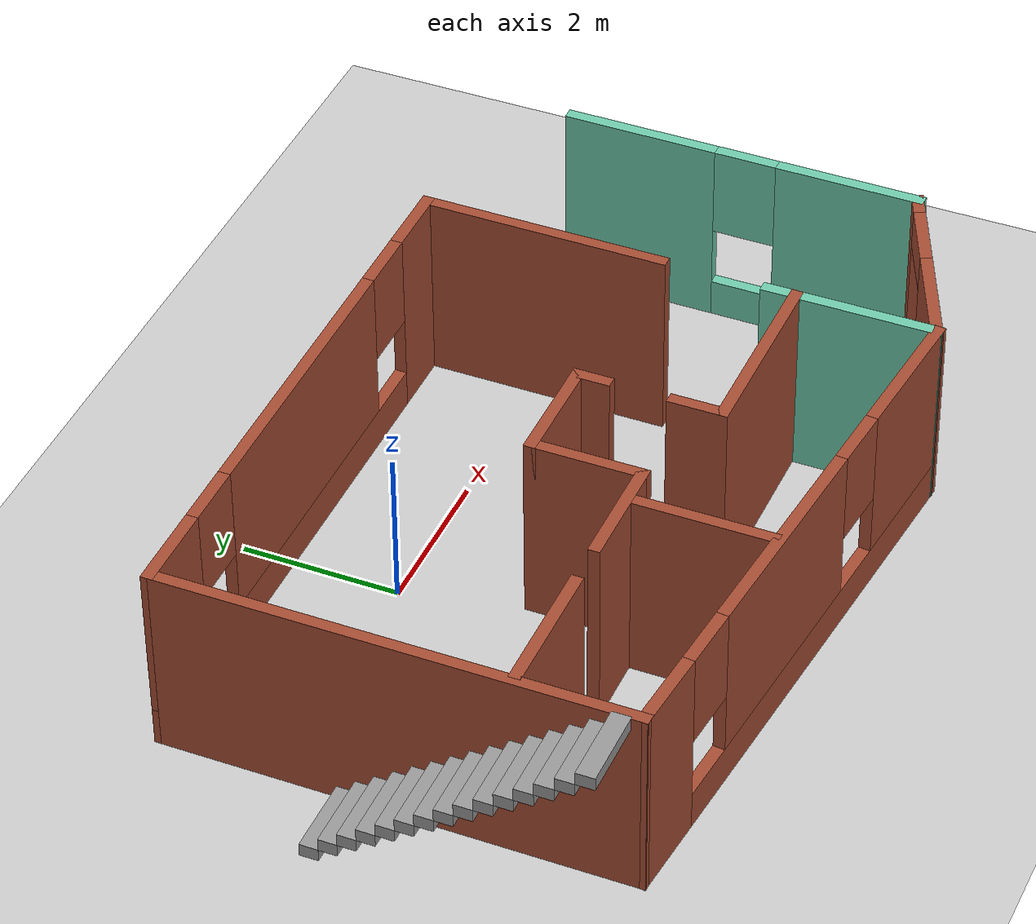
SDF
<sdf version="1.5">
 <world name="default">
  <light name="sun" type="directional">
   <pose>0 0 10 0 -0 0</pose>
   <diffuse>0.8 0.8 0.8 1</diffuse>
   <specular>0.2 0.2 0.2 1</specular>
   <attenuation>
    <range>1000</range>
    <constant>0.9</constant>
    <linear>0.01</linear>
    <quadratic>0.001</quadratic>
   </attenuation>
   <direction>-0.5 0.1 -0.9</direction>
  </light>
  <model name="ground_plane">
   <static>1</static>
   <link name="link">
    <collision name="collision">
     <geometry><plane><normal>0 0 1</normal><size>100 100</size></plane></geometry>
     <surface><friction><ode><mu>100</mu><mu2>50</mu2></ode></friction></surface>
    </collision>
    <visual name="visual">
     <cast_shadows>0</cast_shadows>
     <geometry><plane><normal>0 0 1</normal><size>100 100</size></plane></geometry>
     <material>
      <script><uri>file://media/materials/scripts/gazebo.material</uri><name>Gazebo/Grey</name></script>
     </material>
    </visual>
   </link>
  </model>
  <physics name="default_physics" default="0" type="ode">
   <max_step_size>0.001</max_step_size>
   <real_time_factor>1</real_time_factor>
   <real_time_update_rate>1000</real_time_update_rate>
   <gravity>0 0 -9.8</gravity>
   <magnetic_field>5.5645e-06 2.28758e-05 -4.23884e-05</magnetic_field>
  </physics>
  <scene><ambient>0.4 0.4 0.4 1</ambient><background>0.7 0.7 0.7 1</background><shadows>1</shadows></scene>
  <spherical_coordinates>
   <surface_model>EARTH_WGS84</surface_model>
   <latitude_deg>0</latitude_deg>
   <longitude_deg>0</longitude_deg>
   <elevation>0</elevation>
   <heading_deg>0</heading_deg>
  </spherical_coordinates>
  <model name="world_1">
   <pose>1.10777 -1.85239 0 0 -0 0</pose>
   <link name="Stairs_0">
    <visual name="Stairs_0_Visual_0">
     <pose>-4.90473 0.962573 0.083333 0 -0 0</pose>
     <geometry><box><size>1 0.233333 0.166667</size></box></geometry>
     <material>
      <script><uri>file://media/materials/scripts/gazebo.material</uri><name>Gazebo/Grey</name></script>
      <ambient>1 1 1 1</ambient>
     </material>
     <meta><layer>0</layer></meta>
    </visual>
    <collision name="Stairs_0_Collision_0">
     <geometry><box><size>1 0.233333 0.166667</size></box></geometry>
     <pose>-4.90473 0.962573 0.083333 0 -0 0</pose>
    </collision>
    <visual name="Stairs_0_Visual_1">
     <pose>-4.90473 0.72924 0.25 0 -0 0</pose>
     <geometry><box><size>1 0.233333 0.166667</size></box></geometry>
     <material>
      <script><uri>file://media/materials/scripts/gazebo.material</uri><name>Gazebo/Grey</name></script>
      <ambient>1 1 1 1</ambient>
     </material>
     <meta><layer>0</layer></meta>
    </visual>
    <collision name="Stairs_0_Collision_1">
     <geometry><box><size>1 0.233333 0.166667</size></box></geometry>
     <pose>-4.90473 0.72924 0.25 0 -0 0</pose>
    </collision>
    <visual name="Stairs_0_Visual_2">
     <pose>-4.90473 0.495906 0.416667 0 -0 0</pose>
     <geometry><box><size>1 0.233333 0.166667</size></box></geometry>
     <material>
      <script><uri>file://media/materials/scripts/gazebo.material</uri><name>Gazebo/Grey</name></script>
      <ambient>1 1 1 1</ambient>
     </material>
     <meta><layer>0</layer></meta>
    </visual>
    <collision name="Stairs_0_Collision_2">
     <geometry><box><size>1 0.233333 0.166667</size></box></geometry>
     <pose>-4.90473 0.495906 0.416667 0 -0 0</pose>
    </collision>
    <visual name="Stairs_0_Visual_3">
     <pose>-4.90473 0.262573 0.583333 0 -0 0</pose>
     <geometry><box><size>1 0.233333 0.166667</size></box></geometry>
     <material>
      <script><uri>file://media/materials/scripts/gazebo.material</uri><name>Gazebo/Grey</name></script>
      <ambient>1 1 1 1</ambient>
     </material>
     <meta><layer>0</layer></meta>
    </visual>
    <collision name="Stairs_0_Collision_3">
     <geometry><box><size>1 0.233333 0.166667</size></box></geometry>
     <pose>-4.90473 0.262573 0.583333 0 -0 0</pose>
    </collision>
    <visual name="Stairs_0_Visual_4">
     <pose>-4.90473 0.02924 0.75 0 -0 0</pose>
     <geometry><box><size>1 0.233333 0.166667</size></box></geometry>
     <material>
      <script><uri>file://media/materials/scripts/gazebo.material</uri><name>Gazebo/Grey</name></script>
      <ambient>1 1 1 1</ambient>
     </material>
     <meta><layer>0</layer></meta>
    </visual>
    <collision name="Stairs_0_Collision_4">
     <geometry><box><size>1 0.233333 0.166667</size></box></geometry>
     <pose>-4.90473 0.02924 0.75 0 -0 0</pose>
    </collision>
    <visual name="Stairs_0_Visual_5">
     <pose>-4.90473 -0.204094 0.916667 0 -0 0</pose>
     <geometry><box><size>1 0.233333 0.166667</size></box></geometry>
     <material>
      <script><uri>file://media/materials/scripts/gazebo.material</uri><name>Gazebo/Grey</name></script>
      <ambient>1 1 1 1</ambient>
     </material>
     <meta><layer>0</layer></meta>
    </visual>
    <collision name="Stairs_0_Collision_5">
     <geometry><box><size>1 0.233333 0.166667</size></box></geometry>
     <pose>-4.90473 -0.204094 0.916667 0 -0 0</pose>
    </collision>
    <visual name="Stairs_0_Visual_6">
     <pose>-4.90473 -0.437427 1.08333 0 -0 0</pose>
     <geometry><box><size>1 0.233333 0.166667</size></box></geometry>
     <material>
      <script><uri>file://media/materials/scripts/gazebo.material</uri><name>Gazebo/Grey</name></script>
      <ambient>1 1 1 1</ambient>
     </material>
     <meta><layer>0</layer></meta>
    </visual>
    <collision name="Stairs_0_Collision_6">
     <geometry><box><size>1 0.233333 0.166667</size></box></geometry>
     <pose>-4.90473 -0.437427 1.08333 0 -0 0</pose>
    </collision>
    <visual name="Stairs_0_Visual_7">
     <pose>-4.90473 -0.67076 1.25 0 -0 0</pose>
     <geometry><box><size>1 0.233333 0.166667</size></box></geometry>
     <material>
      <script><uri>file://media/materials/scripts/gazebo.material</uri><name>Gazebo/Grey</name></script>
      <ambient>1 1 1 1</ambient>
     </material>
     <meta><layer>0</layer></meta>
    </visual>
    <collision name="Stairs_0_Collision_7">
     <geometry><box><size>1 0.233333 0.166667</size></box></geometry>
     <pose>-4.90473 -0.67076 1.25 0 -0 0</pose>
    </collision>
    <visual name="Stairs_0_Visual_8">
     <pose>-4.90473 -0.904094 1.41667 0 -0 0</pose>
     <geometry><box><size>1 0.233333 0.166667</size></box></geometry>
     <material>
      <script><uri>file://media/materials/scripts/gazebo.material</uri><name>Gazebo/Grey</name></script>
      <ambient>1 1 1 1</ambient>
     </material>
     <meta><layer>0</layer></meta>
    </visual>
    <collision name="Stairs_0_Collision_8">
     <geometry><box><size>1 0.233333 0.166667</size></box></geometry>
     <pose>-4.90473 -0.904094 1.41667 0 -0 0</pose>
    </collision>
    <visual name="Stairs_0_Visual_9">
     <pose>-4.90473 -1.13743 1.58333 0 -0 0</pose>
     <geometry><box><size>1 0.233333 0.166667</size></box></geometry>
     <material>
      <script><uri>file://media/materials/scripts/gazebo.material</uri><name>Gazebo/Grey</name></script>
      <ambient>1 1 1 1</ambient>
     </material>
     <meta><layer>0</layer></meta>
    </visual>
    <collision name="Stairs_0_Collision_9">
     <geometry><box><size>1 0.233333 0.166667</size></box></geometry>
     <pose>-4.90473 -1.13743 1.58333 0 -0 0</pose>
    </collision>
    <visual name="Stairs_0_Visual_10">
     <pose>-4.90473 -1.37076 1.75 0 -0 0</pose>
     <geometry><box><size>1 0.233333 0.166667</size></box></geometry>
     <material>
      <script><uri>file://media/materials/scripts/gazebo.material</uri><name>Gazebo/Grey</name></script>
      <ambient>1 1 1 1</ambient>
     </material>
     <meta><layer>0</layer></meta>
    </visual>
    <collision name="Stairs_0_Collision_10">
     <geometry><box><size>1 0.233333 0.166667</size></box></geometry>
     <pose>-4.90473 -1.37076 1.75 0 -0 0</pose>
    </collision>
    <visual name="Stairs_0_Visual_11">
     <pose>-4.90473 -1.60409 1.91667 0 -0 0</pose>
     <geometry><box><size>1 0.233333 0.166667</size></box></geometry>
     <material>
      <script><uri>file://media/materials/scripts/gazebo.material</uri><name>Gazebo/Grey</name></script>
      <ambient>1 1 1 1</ambient>
     </material>
     <meta><layer>0</layer></meta>
    </visual>
    <collision name="Stairs_0_Collision_11">
     <geometry><box><size>1 0.233333 0.166667</size></box></geometry>
     <pose>-4.90473 -1.60409 1.91667 0 -0 0</pose>
    </collision>
    <visual name="Stairs_0_Visual_12">
     <pose>-4.90473 -1.83743 2.08333 0 -0 0</pose>
     <geometry><box><size>1 0.233333 0.166667</size></box></geometry>
     <material>
      <script><uri>file://media/materials/scripts/gazebo.material</uri><name>Gazebo/Grey</name></script>
      <ambient>1 1 1 1</ambient>
     </material>
     <meta><layer>0</layer></meta>
    </visual>
    <collision name="Stairs_0_Collision_12">
     <geometry><box><size>1 0.233333 0.166667</size></box></geometry>
     <pose>-4.90473 -1.83743 2.08333 0 -0 0</pose>
    </collision>
    <visual name="Stairs_0_Visual_13">
     <pose>-4.90473 -2.07076 2.25 0 -0 0</pose>
     <geometry><box><size>1 0.233333 0.166667</size></box></geometry>
     <material>
      <script><uri>file://media/materials/scripts/gazebo.material</uri><name>Gazebo/Grey</name></script>
      <ambient>1 1 1 1</ambient>
     </material>
     <meta><layer>0</layer></meta>
    </visual>
    <collision name="Stairs_0_Collision_13">
     <geometry><box><size>1 0.233333 0.166667</size></box></geometry>
     <pose>-4.90473 -2.07076 2.25 0 -0 0</pose>
    </collision>
    <visual name="Stairs_0_Visual_14">
     <pose>-4.90473 -2.30409 2.41667 0 -0 0</pose>
     <geometry><box><size>1 0.233333 0.166667</size></box></geometry>
     <material>
      <script><uri>file://media/materials/scripts/gazebo.material</uri><name>Gazebo/Grey</name></script>
      <ambient>1 1 1 1</ambient>
     </material>
     <meta><layer>0</layer></meta>
    </visual>
    <collision name="Stairs_0_Collision_14">
     <geometry><box><size>1 0.233333 0.166667</size></box></geometry>
     <pose>-4.90473 -2.30409 2.41667 0 -0 0</pose>
    </collision>
   </link>
   <link name="Wall_17">
    <collision name="Wall_17_Collision">
     <geometry><box><size>1.5 0.15 2.5</size></box></geometry>
     <pose>0 0 1.25 0 -0 0</pose>
    </collision>
    <visual name="Wall_17_Visual">
     <pose>0 0 1.25 0 -0 0</pose>
     <geometry><box><size>1.5 0.15 2.5</size></box></geometry>
     <material>
      <script><uri>file://media/materials/scripts/gazebo.material</uri><name>Gazebo/Bricks</name></script>
      <ambient>1 1 1 1</ambient>
     </material>
     <meta><layer>0</layer></meta>
    </visual>
    <pose>-1.38893 -1.04611 0 0 -0 0</pose>
   </link>
   <link name="Wall_18">
    <collision name="Wall_18_Collision">
     <geometry><box><size>1.5 0.15 2.5</size></box></geometry>
     <pose>0 0 1.25 0 -0 0</pose>
    </collision>
    <visual name="Wall_18_Visual">
     <pose>0 0 1.25 0 -0 0</pose>
     <geometry><box><size>1.5 0.15 2.5</size></box></geometry>
     <material>
      <script><uri>file://media/materials/scripts/gazebo.material</uri><name>Gazebo/Bricks</name></script>
      <ambient>1 1 1 1</ambient>
     </material>
     <meta><layer>0</layer></meta>
    </visual>
    <pose>-0.713932 -0.371112 0 0 -0 1.5708</pose>
   </link>
   <link name="Wall_19">
    <collision name="Wall_19_Collision">
     <geometry><box><size>1.5 0.15 2.5</size></box></geometry>
     <pose>0 0 1.25 0 -0 0</pose>
    </collision>
    <visual name="Wall_19_Visual">
     <pose>0 0 1.25 0 -0 0</pose>
     <geometry><box><size>1.5 0.15 2.5</size></box></geometry>
     <material>
      <script><uri>file://media/materials/scripts/gazebo.material</uri><name>Gazebo/Bricks</name></script>
      <ambient>1 1 1 1</ambient>
     </material>
     <meta><layer>0</layer></meta>
    </visual>
    <pose>-0.038932 0.303888 0 0 -0 0</pose>
   </link>
   <link name="Wall_20">
    <collision name="Wall_20_Collision">
     <geometry><box><size>0.5 0.15 2.5</size></box></geometry>
     <pose>0 0 1.25 0 -0 0</pose>
    </collision>
    <visual name="Wall_20_Visual">
     <pose>0 0 1.25 0 -0 0</pose>
     <geometry><box><size>0.5 0.15 2.5</size></box></geometry>
     <material>
      <script><uri>file://media/materials/scripts/gazebo.material</uri><name>Gazebo/Bricks</name></script>
      <ambient>1 1 1 1</ambient>
     </material>
     <meta><layer>0</layer></meta>
    </visual>
    <pose>0.636068 0.128888 0 0 -0 -1.5708</pose>
   </link>
   <link name="Wall_22">
    <collision name="Wall_22_Collision">
     <geometry><box><size>0.75 0.15 2.5</size></box></geometry>
     <pose>0 0 1.25 0 -0 0</pose>
    </collision>
    <visual name="Wall_22_Visual">
     <pose>0 0 1.25 0 -0 0</pose>
     <geometry><box><size>0.75 0.15 2.5</size></box></geometry>
     <material>
      <script><uri>file://media/materials/scripts/gazebo.material</uri><name>Gazebo/Bricks</name></script>
      <ambient>1 1 1 1</ambient>
     </material>
     <meta><layer>0</layer></meta>
    </visual>
    <pose>0.636068 -1.19611 0 0 -0 -1.5708</pose>
   </link>
   <link name="Wall_23">
    <collision name="Wall_23_Collision">
     <geometry><box><size>2.5 0.15 2.5</size></box></geometry>
     <pose>0 0 1.25 0 -0 0</pose>
    </collision>
    <visual name="Wall_23_Visual">
     <pose>0 0 1.25 0 -0 0</pose>
     <geometry><box><size>2.5 0.15 2.5</size></box></geometry>
     <material>
      <script><uri>file://media/materials/scripts/gazebo.material</uri><name>Gazebo/Bricks</name></script>
      <ambient>1 1 1 1</ambient>
     </material>
     <meta><layer>0</layer></meta>
    </visual>
    <pose>1.81107 -1.49611 0 0 -0 0</pose>
   </link>
   <link name="Wall_24">
    <collision name="Wall_24_Collision">
     <geometry><box><size>0.5 0.15 2.5</size></box></geometry>
     <pose>0 0 1.25 0 -0 0</pose>
    </collision>
    <visual name="Wall_24_Visual">
     <pose>0 0 1.25 0 -0 0</pose>
     <geometry><box><size>0.5 0.15 2.5</size></box></geometry>
     <material>
      <script><uri>file://media/materials/scripts/gazebo.material</uri><name>Gazebo/Grey</name></script>
      <ambient>0.435294 0.796078 0.67451 1</ambient>
     </material>
     <meta><layer>0</layer></meta>
    </visual>
    <pose>2.98607 -1.32111 0 0 -0 1.5708</pose>
   </link>
   <link name="Wall_26">
    <collision name="Wall_26_Collision">
     <geometry><box><size>3.21704 0.15 2.5</size></box></geometry>
     <pose>0 0 1.25 0 -0 0</pose>
    </collision>
    <visual name="Wall_26_Visual">
     <pose>0 0 1.25 0 -0 0</pose>
     <geometry><box><size>3.21704 0.15 2.5</size></box></geometry>
     <material>
      <script><uri>file://media/materials/scripts/gazebo.material</uri><name>Gazebo/Bricks</name></script>
      <ambient>1 1 1 1</ambient>
     </material>
     <meta><layer>0</layer></meta>
    </visual>
    <pose>2.99055 1.7374 0 0 -0 1.56787</pose>
   </link>
   <link name="Wall_30">
    <collision name="Wall_30_Collision">
     <geometry><box><size>1.91415 0.15 2.5</size></box></geometry>
     <pose>0 0 1.25 0 -0 0</pose>
    </collision>
    <visual name="Wall_30_Visual">
     <pose>0 0 1.25 0 -0 0</pose>
     <geometry><box><size>1.91415 0.15 2.5</size></box></geometry>
     <material>
      <script><uri>file://media/materials/scripts/gazebo.material</uri><name>Gazebo/Grey</name></script>
      <ambient>0.435294 0.796078 0.67451 1</ambient>
     </material>
     <meta><layer>0</layer></meta>
    </visual>
    <pose>2.98607 -2.37819 0 0 -0 1.5708</pose>
   </link>
   <link name="Wall_34">
    <pose>-0.679968 3.27091 0 0 -0 3.14159</pose>
    <visual name="Wall_34_Visual_0">
     <pose>-3.2676 0 1.25 0 -0 0</pose>
     <geometry><box><size>0.9648 0.15 2.5</size></box></geometry>
     <material>
      <script><uri>file://media/materials/scripts/gazebo.material</uri><name>Gazebo/Bricks</name></script>
      <ambient>1 1 1 1</ambient>
     </material>
     <meta><layer>0</layer></meta>
    </visual>
    <collision name="Wall_34_Collision_0">
     <geometry><box><size>0.9648 0.15 2.5</size></box></geometry>
     <pose>-3.2676 0 1.25 0 -0 0</pose>
    </collision>
    <visual name="Wall_34_Visual_1">
     <pose>0.4824 0 0.25 0 -0 0</pose>
     <geometry><box><size>6.5352 0.15 0.5</size></box></geometry>
     <material>
      <script><uri>file://media/materials/scripts/gazebo.material</uri><name>Gazebo/Bricks</name></script>
      <ambient>1 1 1 1</ambient>
     </material>
     <meta><layer>0</layer></meta>
    </visual>
    <collision name="Wall_34_Collision_1">
     <geometry><box><size>6.5352 0.15 0.5</size></box></geometry>
     <pose>0.4824 0 0.25 0 -0 0</pose>
    </collision>
    <visual name="Wall_34_Visual_2">
     <pose>-0.0737 0 1.5 0 -0 0</pose>
     <geometry><box><size>3.823 0.15 2</size></box></geometry>
     <material>
      <script><uri>file://media/materials/scripts/gazebo.material</uri><name>Gazebo/Bricks</name></script>
      <ambient>1 1 1 1</ambient>
     </material>
     <meta><layer>0</layer></meta>
    </visual>
    <collision name="Wall_34_Collision_2">
     <geometry><box><size>3.823 0.15 2</size></box></geometry>
     <pose>-0.0737 0 1.5 0 -0 0</pose>
    </collision>
    <visual name="Wall_34_Visual_3">
     <pose>3.1939 0 1.5 0 -0 0</pose>
     <geometry><box><size>1.1122 0.15 2</size></box></geometry>
     <material>
      <script><uri>file://media/materials/scripts/gazebo.material</uri><name>Gazebo/Bricks</name></script>
      <ambient>1 1 1 1</ambient>
     </material>
     <meta><layer>0</layer></meta>
    </visual>
    <collision name="Wall_34_Collision_3">
     <geometry><box><size>1.1122 0.15 2</size></box></geometry>
     <pose>3.1939 0 1.5 0 -0 0</pose>
    </collision>
    <visual name="Wall_34_Visual_4">
     <pose>-2.3852 0 1.9 0 -0 0</pose>
     <geometry><box><size>0.8 0.15 1.2</size></box></geometry>
     <material>
      <script><uri>file://media/materials/scripts/gazebo.material</uri><name>Gazebo/Bricks</name></script>
      <ambient>1 1 1 1</ambient>
     </material>
     <meta><layer>0</layer></meta>
    </visual>
    <collision name="Wall_34_Collision_4">
     <geometry><box><size>0.8 0.15 1.2</size></box></geometry>
     <pose>-2.3852 0 1.9 0 -0 0</pose>
    </collision>
    <visual name="Wall_34_Visual_5">
     <pose>2.2378 0 1.9 0 -0 0</pose>
     <geometry><box><size>0.8 0.15 1.2</size></box></geometry>
     <material>
      <script><uri>file://media/materials/scripts/gazebo.material</uri><name>Gazebo/Bricks</name></script>
      <ambient>1 1 1 1</ambient>
     </material>
     <meta><layer>0</layer></meta>
    </visual>
    <collision name="Wall_34_Collision_5">
     <geometry><box><size>0.8 0.15 1.2</size></box></geometry>
     <pose>2.2378 0 1.9 0 -0 0</pose>
    </collision>
   </link>
   <link name="Wall_35">
    <collision name="Wall_35_Collision">
     <geometry><box><size>5.96703 0.15 2.5</size></box></geometry>
     <pose>0 0 1.25 0 -0 0</pose>
    </collision>
    <visual name="Wall_35_Visual">
     <pose>0 0 1.25 0 -0 0</pose>
     <geometry><box><size>5.96703 0.15 2.5</size></box></geometry>
     <material>
      <script><uri>file://media/materials/scripts/gazebo.material</uri><name>Gazebo/Bricks</name></script>
      <ambient>1 1 1 1</ambient>
     </material>
     <meta><layer>0</layer></meta>
    </visual>
    <pose>-4.35945 0.3624 0 0 -0 -1.57234</pose>
   </link>
   <link name="Wall_36">
    <pose>-0.688932 -2.90319 0 0 -0 -0.096859</pose>
    <visual name="Wall_36_Visual_0">
     <pose>-3.21938 0 1.25 0 -0 0</pose>
     <geometry><box><size>1.09586 0.15 2.5</size></box></geometry>
     <material>
      <script><uri>file://media/materials/scripts/gazebo.material</uri><name>Gazebo/Bricks</name></script>
      <ambient>1 1 1 1</ambient>
     </material>
     <meta><layer>0</layer></meta>
    </visual>
    <collision name="Wall_36_Collision_0">
     <geometry><box><size>1.09586 0.15 2.5</size></box></geometry>
     <pose>-3.21938 0 1.25 0 -0 0</pose>
    </collision>
    <visual name="Wall_36_Visual_1">
     <pose>0.54793 0 0.25 0 -0 0</pose>
     <geometry><box><size>6.43875 0.15 0.5</size></box></geometry>
     <material>
      <script><uri>file://media/materials/scripts/gazebo.material</uri><name>Gazebo/Bricks</name></script>
      <ambient>1 1 1 1</ambient>
     </material>
     <meta><layer>0</layer></meta>
    </visual>
    <collision name="Wall_36_Collision_1">
     <geometry><box><size>6.43875 0.15 0.5</size></box></geometry>
     <pose>0.54793 0 0.25 0 -0 0</pose>
    </collision>
    <visual name="Wall_36_Visual_2">
     <pose>-0.388119 0 1.5 0 -0 0</pose>
     <geometry><box><size>2.96665 0.15 2</size></box></geometry>
     <material>
      <script><uri>file://media/materials/scripts/gazebo.material</uri><name>Gazebo/Bricks</name></script>
      <ambient>1 1 1 1</ambient>
     </material>
     <meta><layer>0</layer></meta>
    </visual>
    <collision name="Wall_36_Collision_2">
     <geometry><box><size>2.96665 0.15 2</size></box></geometry>
     <pose>-0.388119 0 1.5 0 -0 0</pose>
    </collision>
    <visual name="Wall_36_Visual_3">
     <pose>2.83126 0 1.5 0 -0 0</pose>
     <geometry><box><size>1.8721 0.15 2</size></box></geometry>
     <material>
      <script><uri>file://media/materials/scripts/gazebo.material</uri><name>Gazebo/Bricks</name></script>
      <ambient>1 1 1 1</ambient>
     </material>
     <meta><layer>0</layer></meta>
    </visual>
    <collision name="Wall_36_Collision_3">
     <geometry><box><size>1.8721 0.15 2</size></box></geometry>
     <pose>2.83126 0 1.5 0 -0 0</pose>
    </collision>
    <visual name="Wall_36_Visual_4">
     <pose>-2.27145 0 1.9 0 -0 0</pose>
     <geometry><box><size>0.8 0.15 1.2</size></box></geometry>
     <material>
      <script><uri>file://media/materials/scripts/gazebo.material</uri><name>Gazebo/Bricks</name></script>
      <ambient>1 1 1 1</ambient>
     </material>
     <meta><layer>0</layer></meta>
    </visual>
    <collision name="Wall_36_Collision_4">
     <geometry><box><size>0.8 0.15 1.2</size></box></geometry>
     <pose>-2.27145 0 1.9 0 -0 0</pose>
    </collision>
    <visual name="Wall_36_Visual_5">
     <pose>1.49521 0 1.9 0 -0 0</pose>
     <geometry><box><size>0.8 0.15 1.2</size></box></geometry>
     <material>
      <script><uri>file://media/materials/scripts/gazebo.material</uri><name>Gazebo/Bricks</name></script>
      <ambient>1 1 1 1</ambient>
     </material>
     <meta><layer>0</layer></meta>
    </visual>
    <collision name="Wall_36_Collision_5">
     <geometry><box><size>0.8 0.15 1.2</size></box></geometry>
     <pose>1.49521 0 1.9 0 -0 0</pose>
    </collision>
   </link>
   <link name="Wall_38">
    <collision name="Wall_38_Collision">
     <geometry><box><size>1.75 0.15 2.5</size></box></geometry>
     <pose>0 0 1.25 0 -0 0</pose>
    </collision>
    <visual name="Wall_38_Visual">
     <pose>0 0 1.25 0 -0 0</pose>
     <geometry><box><size>1.75 0.15 2.5</size></box></geometry>
     <material>
      <script><uri>file://media/materials/scripts/gazebo.material</uri><name>Gazebo/Bricks</name></script>
      <ambient>1 1 1 1</ambient>
     </material>
     <meta><layer>0</layer></meta>
    </visual>
    <pose>-3.46393 -1.04611 0 0 -0 3.14159</pose>
   </link>
   <link name="Wall_41">
    <pose>5.31438 0.051177 0 0 -0 -1.57464</pose>
    <visual name="Wall_41_Visual_0">
     <pose>-1.35165 0 1.25 0 -0 0</pose>
     <geometry><box><size>1.9934 0.15 2.5</size></box></geometry>
     <material>
      <script><uri>file://media/materials/scripts/gazebo.material</uri><name>Gazebo/Grey</name></script>
      <ambient>0.435294 0.796078 0.67451 1</ambient>
     </material>
     <meta><layer>0</layer></meta>
    </visual>
    <collision name="Wall_41_Collision_0">
     <geometry><box><size>1.9934 0.15 2.5</size></box></geometry>
     <pose>-1.35165 0 1.25 0 -0 0</pose>
    </collision>
    <visual name="Wall_41_Visual_1">
     <pose>0.996699 0 0.25 0 -0 0</pose>
     <geometry><box><size>2.70329 0.15 0.5</size></box></geometry>
     <material>
      <script><uri>file://media/materials/scripts/gazebo.material</uri><name>Gazebo/Grey</name></script>
      <ambient>0.435294 0.796078 0.67451 1</ambient>
     </material>
     <meta><layer>0</layer></meta>
    </visual>
    <collision name="Wall_41_Collision_1">
     <geometry><box><size>2.70329 0.15 0.5</size></box></geometry>
     <pose>0.996699 0 0.25 0 -0 0</pose>
    </collision>
    <visual name="Wall_41_Visual_2">
     <pose>1.3967 0 1.5 0 -0 0</pose>
     <geometry><box><size>1.90329 0.15 2</size></box></geometry>
     <material>
      <script><uri>file://media/materials/scripts/gazebo.material</uri><name>Gazebo/Grey</name></script>
      <ambient>0.435294 0.796078 0.67451 1</ambient>
     </material>
     <meta><layer>0</layer></meta>
    </visual>
    <collision name="Wall_41_Collision_2">
     <geometry><box><size>1.90329 0.15 2</size></box></geometry>
     <pose>1.3967 0 1.5 0 -0 0</pose>
    </collision>
    <visual name="Wall_41_Visual_3">
     <pose>0.045052 0 1.9 0 -0 0</pose>
     <geometry><box><size>0.8 0.15 1.2</size></box></geometry>
     <material>
      <script><uri>file://media/materials/scripts/gazebo.material</uri><name>Gazebo/Grey</name></script>
      <ambient>0.435294 0.796078 0.67451 1</ambient>
     </material>
     <meta><layer>0</layer></meta>
    </visual>
    <collision name="Wall_41_Collision_3">
     <geometry><box><size>0.8 0.15 1.2</size></box></geometry>
     <pose>0.045052 0 1.9 0 -0 0</pose>
    </collision>
   </link>
   <link name="Wall_42">
    <pose>4.14585 -2.72798 0 0 -0 -2.72078</pose>
    <visual name="Wall_42_Visual_0">
     <pose>-1.17829 0 1.25 0 -0 0</pose>
     <geometry><box><size>0.3347 0.15 2.5</size></box></geometry>
     <material>
      <script><uri>file://media/materials/scripts/gazebo.material</uri><name>Gazebo/Bricks</name></script>
      <ambient>1 1 1 1</ambient>
     </material>
     <meta><layer>0</layer></meta>
    </visual>
    <collision name="Wall_42_Collision_0">
     <geometry><box><size>0.3347 0.15 2.5</size></box></geometry>
     <pose>-1.17829 0 1.25 0 -0 0</pose>
    </collision>
    <visual name="Wall_42_Visual_1">
     <pose>0.61735 0 1.25 0 -0 0</pose>
     <geometry><box><size>1.45657 0.15 2.5</size></box></geometry>
     <material>
      <script><uri>file://media/materials/scripts/gazebo.material</uri><name>Gazebo/Bricks</name></script>
      <ambient>1 1 1 1</ambient>
     </material>
     <meta><layer>0</layer></meta>
    </visual>
    <collision name="Wall_42_Collision_1">
     <geometry><box><size>1.45657 0.15 2.5</size></box></geometry>
     <pose>0.61735 0 1.25 0 -0 0</pose>
    </collision>
    <visual name="Wall_42_Visual_2">
     <pose>-0.560937 0 2.25 0 -0 0</pose>
     <geometry><box><size>0.9 0.15 0.5</size></box></geometry>
     <material>
      <script><uri>file://media/materials/scripts/gazebo.material</uri><name>Gazebo/Bricks</name></script>
      <ambient>1 1 1 1</ambient>
     </material>
     <meta><layer>0</layer></meta>
    </visual>
    <collision name="Wall_42_Collision_2">
     <geometry><box><size>0.9 0.15 0.5</size></box></geometry>
     <pose>-0.560937 0 2.25 0 -0 0</pose>
    </collision>
   </link>
   <link name="Wall_45">
    <collision name="Wall_45_Collision">
     <geometry><box><size>1.75 0.15 2.5</size></box></geometry>
     <pose>0 0 1.25 0 -0 0</pose>
    </collision>
    <visual name="Wall_45_Visual">
     <pose>0 0 1.25 0 -0 0</pose>
     <geometry><box><size>1.75 0.15 2.5</size></box></geometry>
     <material>
      <script><uri>file://media/materials/scripts/gazebo.material</uri><name>Gazebo/Bricks</name></script>
      <ambient>1 1 1 1</ambient>
     </material>
     <meta><layer>0</layer></meta>
    </visual>
    <pose>-1.16723 -1.98376 0 0 -0 1.5708</pose>
   </link>
   <static>1</static>
  </model>
 </world>
</sdf>
